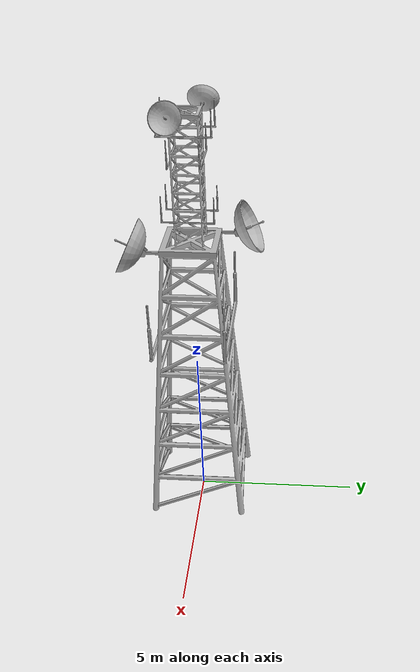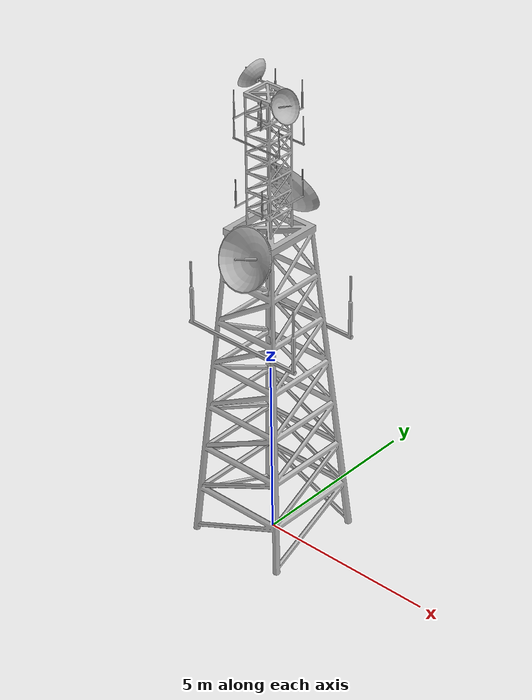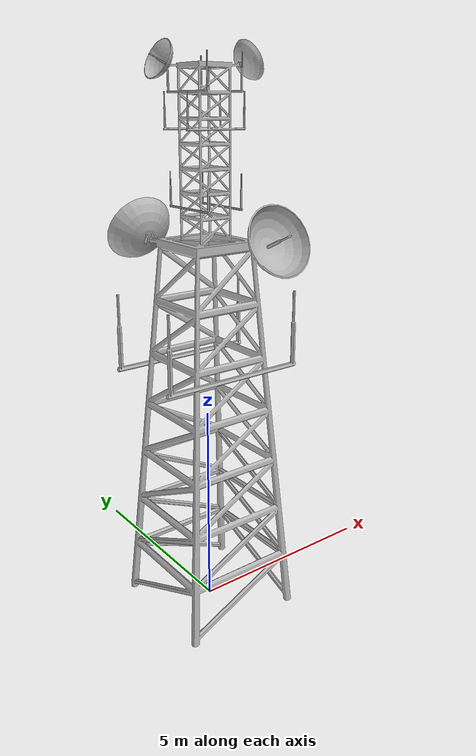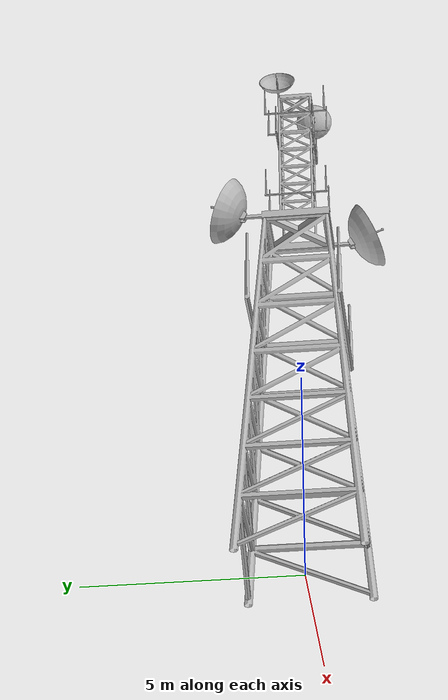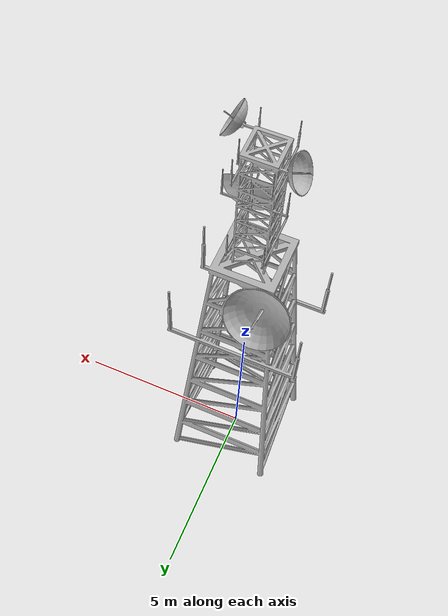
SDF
<?xml version="1.0" encoding="utf-8"?>
<sdf version='1.6'>
  <model name='AntennaRelay'>
    <static>true</static>
    <link name='link'>
        <sensor name="ISACAntennaSensor" type="custom" ignition:type="ISACAntenna">
          <always_on>1</always_on>
          <update_rate>30</update_rate>
          <visualize>true</visualize>
          <ignition:ISACAntenna>
            <tx_power_dBm>15.0</tx_power_dBm>            <!-- moderate power to serve nearby users -->
            <path_loss_exponent>3.0</path_loss_exponent> <!-- indoor or cluttered environment -->
            <fading_std>4.0</fading_std>                <!-- more fading due to multipath -->
            <bandwidth_Hz>2e6</bandwidth_Hz>            <!-- limited bandwidth per relay -->
            <noise_figure_dB>6.0</noise_figure_dB>      <!-- typical receiver NF for relay -->
          </ignition:ISACAntenna>
        </sensor>
      <collision name='collision'>
        <geometry>
          <mesh>
            <uri>model://antenna_relay/meshes/antenna_relay.dae</uri>
            <scale>0.3 0.3 0.3</scale>
          </mesh>
        </geometry>
      </collision>
      <visual name='visual'>
        <geometry>
          <mesh>
            <uri>model://antenna_relay/meshes/antenna_relay.dae</uri>
            <scale>0.3 0.3 0.3</scale>
          </mesh>
        </geometry>
      </visual>
    </link>
  </model>
</sdf>
